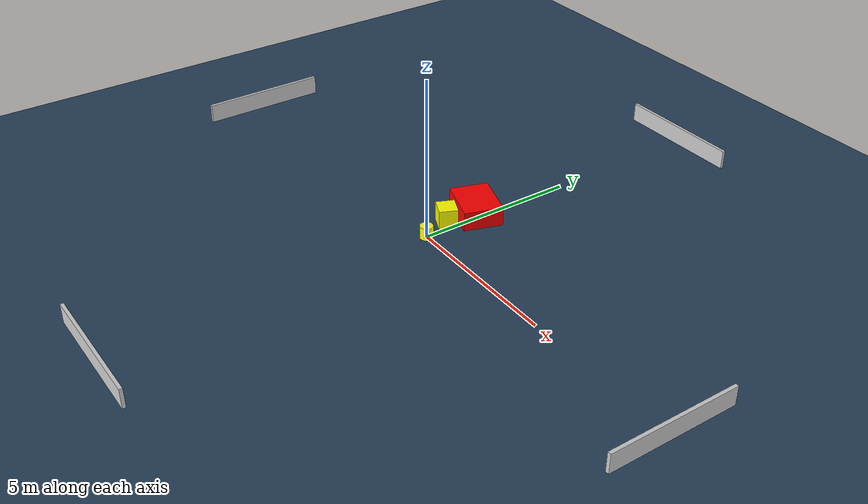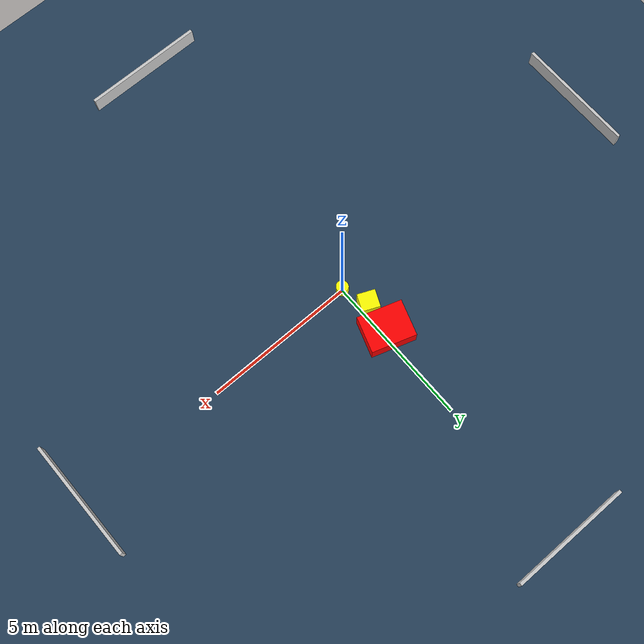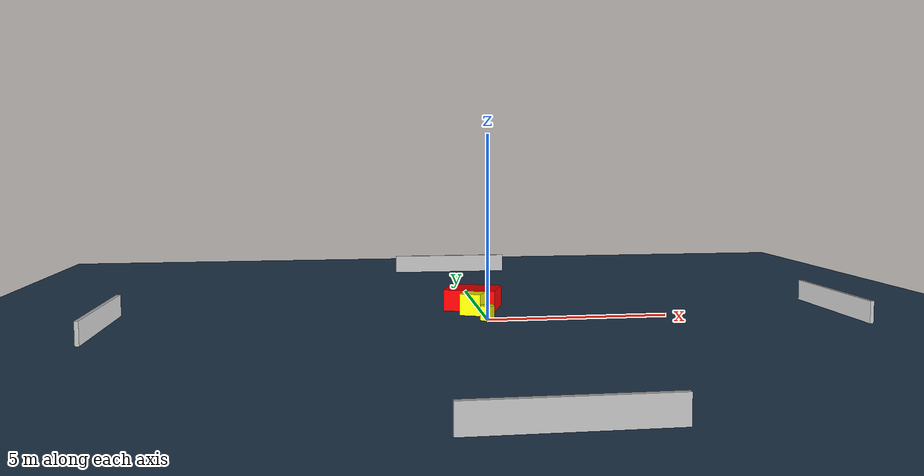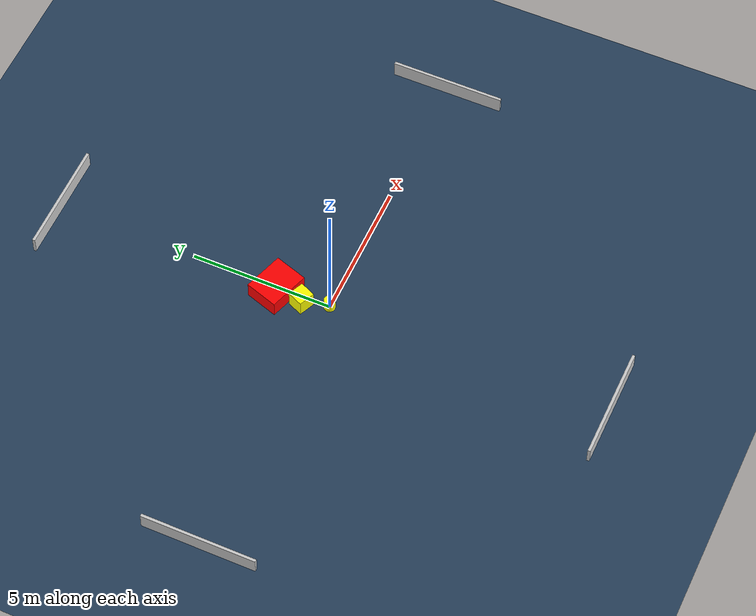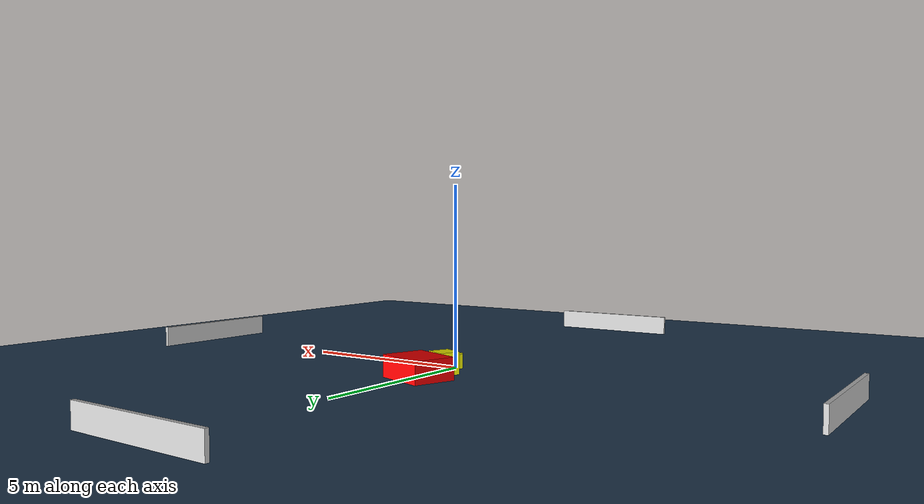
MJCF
<?xml version="1.0" ?>
<mujoco model="generated_environment">
  <option timestep="0.01" integrator="RK4" cone="elliptic"/>
  <default>
    <geom density="1"/>
  </default>
  <asset>
    <texture builtin="gradient" height="3072" name="skybox" rgb1="0.3 0.5 0.7" rgb2="0 0 0" type="skybox" width="512"/>
    <texture builtin="checker" height="300" name="groundplane" rgb1="0.2 0.3 0.4" rgb2="0.1 0.2 0.3" type="2d" width="300"/>
    <material name="groundplane" reflectance="0.2" texrepeat="5 5" texture="groundplane"/>
  </asset>
  <worldbody>
    <light dir="0 0 -1" directional="true" pos="0 0 1.5"/>
    <geom condim="3" friction="0.5 0.005 0.001" material="groundplane" name="floor" pos="0 0 0" size="0 0 0.05" type="plane"/>
    <body name="walls">
      <geom name="wall_1" condim="4" pos="-10.0 0.0 0.3" rgba="0.800000011920929 0.800000011920929 0.800000011920929 1.0" size="0.05 2.0 0.3" type="box"/>
      <geom name="wall_2" condim="4" pos="10.0 0.0 0.3" rgba="0.800000011920929 0.800000011920929 0.800000011920929 1.0" size="0.05 2.0 0.3" type="box"/>
      <geom name="wall_3" condim="4" pos="0.0 -10.0 0.3" rgba="0.800000011920929 0.800000011920929 0.800000011920929 1.0" size="2.0 0.05 0.3" type="box"/>
      <geom name="wall_4" condim="4" pos="0.0 10.0 0.3" rgba="0.800000011920929 0.800000011920929 0.800000011920929 1.0" size="2.0 0.05 0.3" type="box"/>
    </body>
    <body name="robot">
      <joint name="joint_x" type="slide" pos="0 0 0" axis="1 0 0"/>
      <joint name="joint_y" type="slide" pos="0 0 0" axis="0 1 0"/>
      <geom name="robot" type="cylinder" pos="0.0 0.0 0.2" size="0.2 0.2 0.0" mass="5.0" friction="1.0 0.005 0.0001" condim="4" rgba="1.0 1.0 0.0 1.0"/>
    </body>
    <body name="obstacle_1_movable">
      <geom name="obstacle_1_movable" condim="4" pos="-0.2762309102253275 0.9080540920527995 0.3" euler="0 0 336.2258236318512" friction="0.0 0.005 0.001" rgba="1.0 1.0 0.0 1.0" size="0.29569511738488724 0.28707486193537946 0.3" type="box" mass="0.1"/>
      <joint type="free"/>
    </body>
    <body name="obstacle_2_static">
      <geom name="obstacle_2_static" condim="4" pos="-0.15757597241667587 1.8807875316931786 0.3" euler="0 0 71.82854388118754" friction="0.0 0.005 0.001" rgba="1.0 0.0 0.0 1.0" size="0.5966286513233876 0.7365008644975581 0.3" type="box"/>
    </body>
  </worldbody>
  <actuator>
    <motor name="actuator_x" joint="joint_x" gear="1" ctrlrange="-1 1"/>
    <motor name="actuator_y" joint="joint_y" gear="1" ctrlrange="-1 1"/>
  </actuator>
</mujoco>
